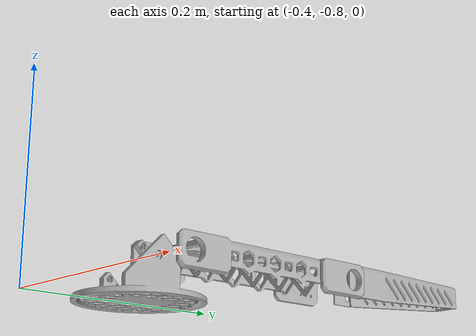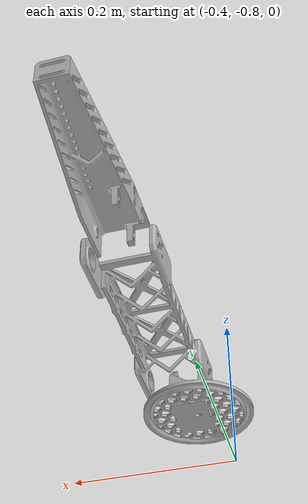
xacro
<?xml version="1.0" ?>
<robot name="RoboticArm" xmlns:xacro="http://www.ros.org/wiki/xacro">

<xacro:include filename="$(find RoboticArm_description)/urdf/materials.xacro" />
<xacro:include filename="$(find RoboticArm_description)/urdf/RoboticArm.trans" />
<xacro:include filename="$(find RoboticArm_description)/urdf/RoboticArm.gazebo" />
<link name="base_link">
  <inertial>
    <origin xyz="-0.3762051134687846 -0.6909294295935521 0.008124091122643777" rpy="0 0 0"/>
    <mass value="0.4337846560885339"/>
    <inertia ixx="0.000385" iyy="0.000382" izz="0.000624" ixy="3e-06" iyz="-1.5e-05" ixz="-2.4e-05"/>
  </inertial>
  <visual>
    <origin xyz="0 0 0" rpy="0 0 0"/>
    <geometry>
      <mesh filename="file://$(find RoboticArm_description)/meshes/base_link.stl" scale="0.001 0.001 0.001"/>
    </geometry>
    <material name="silver"/>
  </visual>
  <collision>
    <origin xyz="0 0 0" rpy="0 0 0"/>
    <geometry>
      <mesh filename="file://$(find RoboticArm_description)/meshes/base_link.stl" scale="0.001 0.001 0.001"/>
    </geometry>
  </collision>
</link>

<link name="UpperArm_1">
  <inertial>
    <origin xyz="0.02941253787121667 0.11499956046643656 -0.013032606489852938" rpy="0 0 0"/>
    <mass value="0.6487371661255532"/>
    <inertia ixx="0.003434" iyy="0.000624" izz="0.003929" ixy="0.0" iyz="0.0" ixz="-4e-06"/>
  </inertial>
  <visual>
    <origin xyz="0.392559 0.685896 -0.057615" rpy="0 0 0"/>
    <geometry>
      <mesh filename="file://$(find RoboticArm_description)/meshes/UpperArm_1.stl" scale="0.001 0.001 0.001"/>
    </geometry>
    <material name="silver"/>
  </visual>
  <collision>
    <origin xyz="0.392559 0.685896 -0.057615" rpy="0 0 0"/>
    <geometry>
      <mesh filename="file://$(find RoboticArm_description)/meshes/UpperArm_1.stl" scale="0.001 0.001 0.001"/>
    </geometry>
  </collision>
</link>

<link name="ForeArm_1">
  <inertial>
    <origin xyz="0.02688459654081704 0.09132325568145622 -0.004713689337876817" rpy="0 0 0"/>
    <mass value="0.39160535197507124"/>
    <inertia ixx="0.001301" iyy="0.000143" izz="0.001371" ixy="3.6e-05" iyz="3e-06" ixz="8e-06"/>
  </inertial>
  <visual>
    <origin xyz="0.392559 0.455896 -0.057615" rpy="0 0 0"/>
    <geometry>
      <mesh filename="file://$(find RoboticArm_description)/meshes/ForeArm_1.stl" scale="0.001 0.001 0.001"/>
    </geometry>
    <material name="silver"/>
  </visual>
  <collision>
    <origin xyz="0.392559 0.455896 -0.057615" rpy="0 0 0"/>
    <geometry>
      <mesh filename="file://$(find RoboticArm_description)/meshes/ForeArm_1.stl" scale="0.001 0.001 0.001"/>
    </geometry>
  </collision>
</link>

<joint name="Revolute 103" type="revolute">
  <origin xyz="-0.392559 -0.685896 0.057615" rpy="0 0 0"/>
  <parent link="base_link"/>
  <child link="UpperArm_1"/>
  <axis xyz="1.0 0.0 -0.0"/>
  <limit upper="1.570796" lower="-1.570796" effort="100" velocity="100"/>
</joint>

<joint name="Revolute 104" type="revolute">
  <origin xyz="0.0 0.23 0.0" rpy="0 0 0"/>
  <parent link="UpperArm_1"/>
  <child link="ForeArm_1"/>
  <axis xyz="1.0 -0.0 -0.0"/>
  <limit upper="1.570796" lower="-1.570796" effort="100" velocity="100"/>
</joint>

</robot>

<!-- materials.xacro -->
<robot name="RoboticArm" xmlns:xacro="http://www.ros.org/wiki/xacro" >

<material name="silver">
  <color rgba="0.700 0.700 0.700 1.000"/>
</material>

</robot>

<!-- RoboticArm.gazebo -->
<robot name="RoboticArm" xmlns:xacro="http://www.ros.org/wiki/xacro" >

<xacro:property name="body_color" value="Gazebo/Silver" />

<gazebo>
  <plugin name="control" filename="libgazebo_ros_control.so"/>
</gazebo>
<gazebo reference="base_link">
  <material>${body_color}</material>
  <mu1>0.2</mu1>
  <mu2>0.2</mu2>
  <self_collide>true</self_collide>
  <gravity>true</gravity>
</gazebo>

<gazebo reference="UpperArm_1">
  <material>${body_color}</material>
  <mu1>0.2</mu1>
  <mu2>0.2</mu2>
  <self_collide>true</self_collide>
</gazebo>

<gazebo reference="ForeArm_1">
  <material>${body_color}</material>
  <mu1>0.2</mu1>
  <mu2>0.2</mu2>
  <self_collide>true</self_collide>
</gazebo>

</robot>
